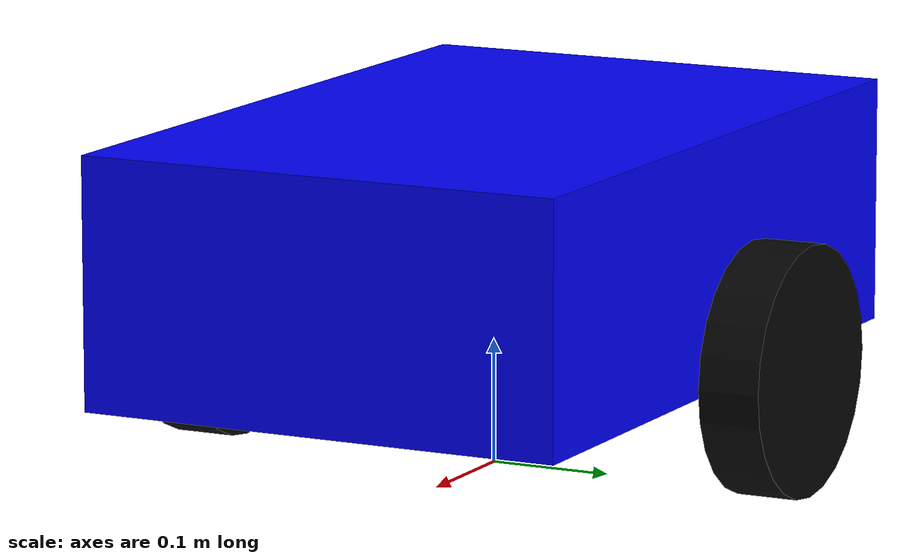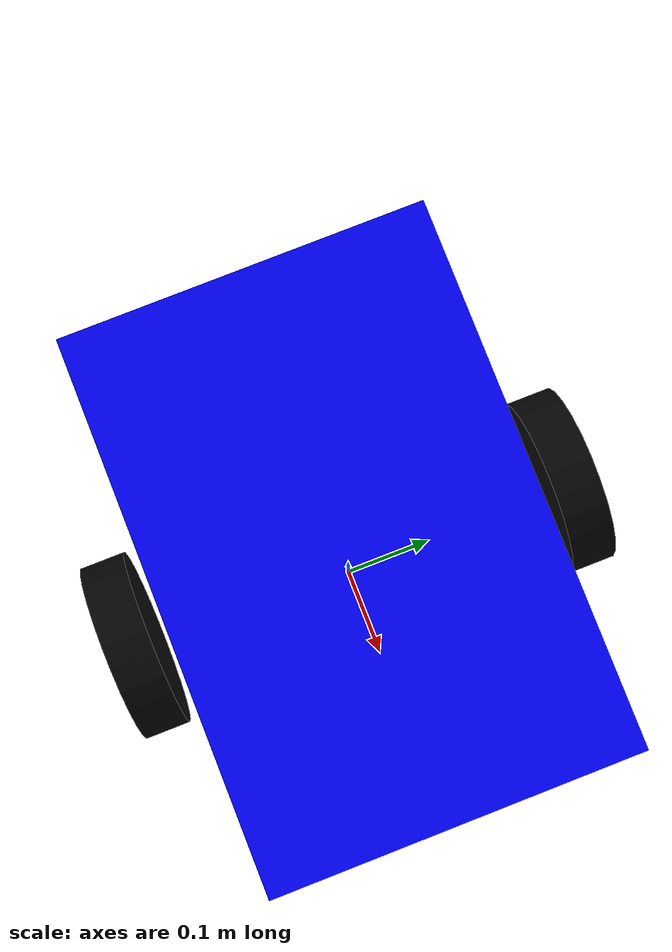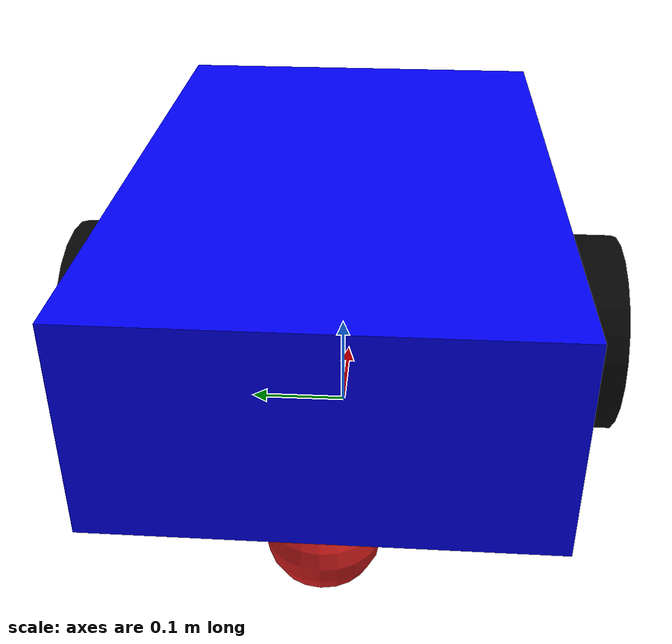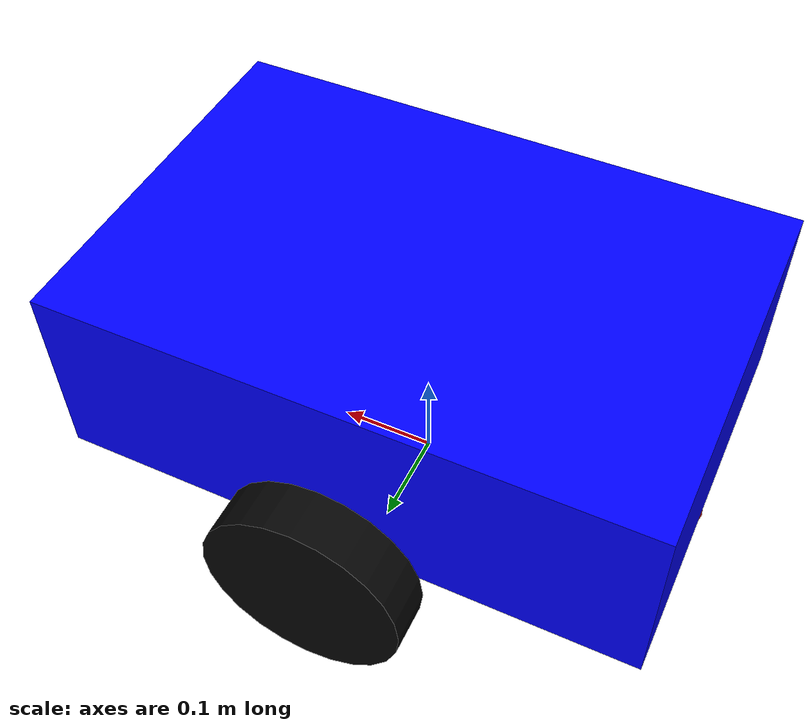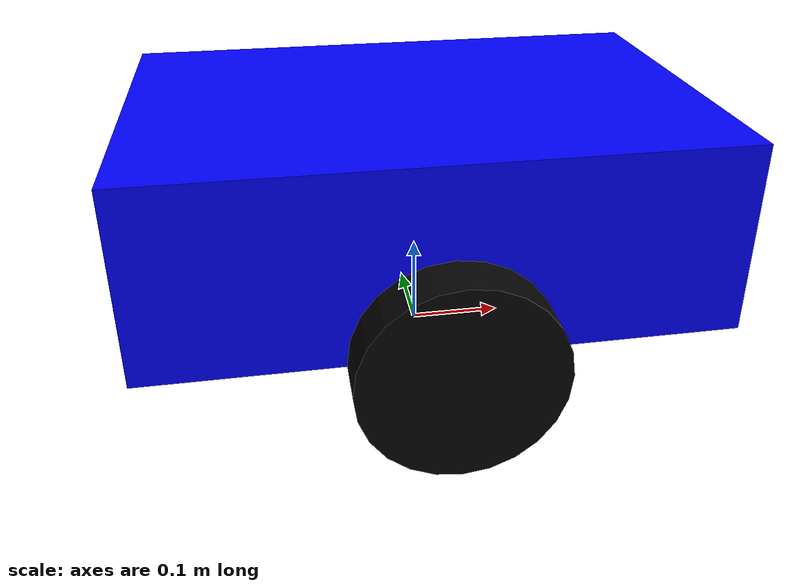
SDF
<?xml version="1.0" ?>
<sdf version="1.9">
  <model name="simple_car">
    <pose>0 0 0 0 0 0</pose>

    <!-- ================= Base Link ================= -->
    <link name="base_link">
      <pose>0 0 0.18 0 0 0</pose>

      <inertial>
        <mass>5.0</mass>
        <inertia>
          <ixx>0.12</ixx>
          <iyy>0.20</iyy>
          <izz>0.25</izz>
        </inertia>
      </inertial>

      <visual name="body_visual">
        <geometry>
          <box>
            <size>0.6 0.4 0.2</size>
          </box>
        </geometry>
        <material>
          <ambient>0 0 1 1</ambient>
          <diffuse>0 0 1 1</diffuse>
        </material>
      </visual>

      <collision name="body_collision">
        <geometry>
          <box>
            <size>0.6 0.4 0.2</size>
          </box>
        </geometry>
      </collision>
    </link>

    <!-- ================= Left Wheel ================= -->
    <link name="left_wheel">
      <pose>0 0.25 0.10 -1.5708 0 0</pose>

      <inertial>
        <mass>0.5</mass>
        <inertia>
          <ixx>0.002</ixx>
          <iyy>0.002</iyy>
          <izz>0.001</izz>
        </inertia>
      </inertial>

      <visual name="visual">
        <geometry>
          <cylinder>
            <radius>0.10</radius>
            <length>0.05</length>
          </cylinder>
        </geometry>
        <material>
          <ambient>0.02 0.02 0.02 1</ambient>
          <diffuse>0.02 0.02 0.02 1</diffuse>
        </material>
      </visual>

      <collision name="collision">
        <geometry>
          <cylinder>
            <radius>0.10</radius>
            <length>0.05</length>
          </cylinder>
        </geometry>
        <surface>
          <friction>
            <ode>
              <mu>1.0</mu>
              <mu2>1.0</mu2>
            </ode>
          </friction>
        </surface>
      </collision>
    </link>

    <!-- ================= Right Wheel ================= -->
    <link name="right_wheel">
      <pose>0 -0.25 0.10 -1.5708 0 0</pose>

      <inertial>
        <mass>0.5</mass>
        <inertia>
          <ixx>0.002</ixx>
          <iyy>0.002</iyy>
          <izz>0.001</izz>
        </inertia>
      </inertial>

      <visual name="visual">
        <geometry>
          <cylinder>
            <radius>0.10</radius>
            <length>0.05</length>
          </cylinder>
        </geometry>
        <material>
          <ambient>0.02 0.02 0.02 1</ambient>
          <diffuse>0.02 0.02 0.02 1</diffuse>
        </material>
      </visual>

      <collision name="collision">
        <geometry>
          <cylinder>
            <radius>0.10</radius>
            <length>0.05</length>
          </cylinder>
        </geometry>
        <surface>
          <friction>
            <ode>
              <mu>1.0</mu>
              <mu2>1.0</mu2>
            </ode>
          </friction>
        </surface>
      </collision>
    </link>

    <!-- ================= Rear Caster ================= -->
    <link name="caster">
      <pose>-0.25 0 0.05 0 0 0</pose>

      <inertial>
        <mass>0.2</mass>
        <inertia>
          <ixx>0.0002</ixx>
          <iyy>0.0002</iyy>
          <izz>0.0002</izz>
        </inertia>
      </inertial>

      <visual name="visual">
        <geometry>
          <sphere>
            <radius>0.05</radius>
          </sphere>
        </geometry>
        <material>
          <ambient>0.8 0.1 0.1 1</ambient>
          <diffuse>0.8 0.1 0.1 1</diffuse>
        </material>
      </visual>

      <collision name="collision">
        <geometry>
          <sphere>
            <radius>0.05</radius>
          </sphere>
        </geometry>
        <surface>
          <friction>
            <ode>
              <mu>0.05</mu>
              <mu2>0.05</mu2>
            </ode>
          </friction>
        </surface>
      </collision>
    </link>

    <!-- ================= Joints ================= -->
    <joint name="left_wheel_joint" type="revolute">
      <parent>base_link</parent>
      <child>left_wheel</child>
      <axis>
        <xyz>0 0 1</xyz>
        <limit>
          <lower>-1e16</lower>
          <upper>1e16</upper>
        </limit>
      </axis>
    </joint>

    <joint name="right_wheel_joint" type="revolute">
      <parent>base_link</parent>
      <child>right_wheel</child>
      <axis>
        <xyz>0 0 1</xyz>
        <limit>
          <lower>-1e16</lower>
          <upper>1e16</upper>
        </limit>
      </axis>
    </joint>

    <joint name="caster_joint" type="fixed">
      <parent>base_link</parent>
      <child>caster</child>
    </joint>

    <!-- ================= Diff Drive Plugin ================= -->
    <plugin filename="gz-sim-diff-drive-system"
            name="gz::sim::systems::DiffDrive">
      <left_joint>left_wheel_joint</left_joint>
      <right_joint>right_wheel_joint</right_joint>

      <wheel_separation>0.5</wheel_separation>
      <wheel_radius>0.1</wheel_radius>

      <topic>/cmd_vel</topic>
      <odom_topic>/odom</odom_topic>

      <frame_id>odom</frame_id>
      <child_frame_id>base_link</child_frame_id>
    </plugin>

  </model>
</sdf>
